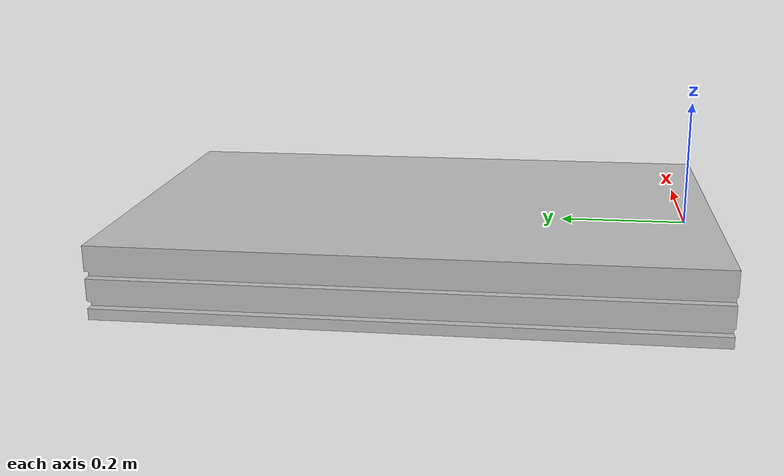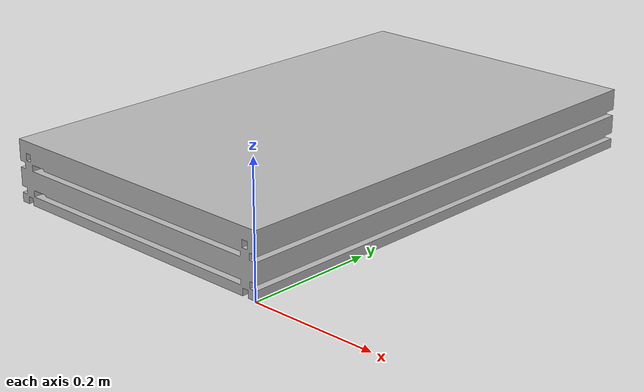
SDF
<?xml version="1.0" ?>
<sdf version="1.5">
  <model name="platform_800x500x99">
    <static>true</static>
    <link name="link">
      <pose>0 0 0 0 0 0</pose>
      <collision name="collision">
        <geometry>
          <mesh>
            <uri>model://platform_800x500x99/meshes/platform_800x500x99.dae</uri>
          </mesh>
        </geometry>
      </collision>
      <visual name="visual">
        <geometry>
          <mesh>
            <uri>model://platform_800x500x99/meshes/platform_800x500x99.dae</uri>
          </mesh>
        </geometry>
      </visual>
    </link>
  </model>
</sdf>
